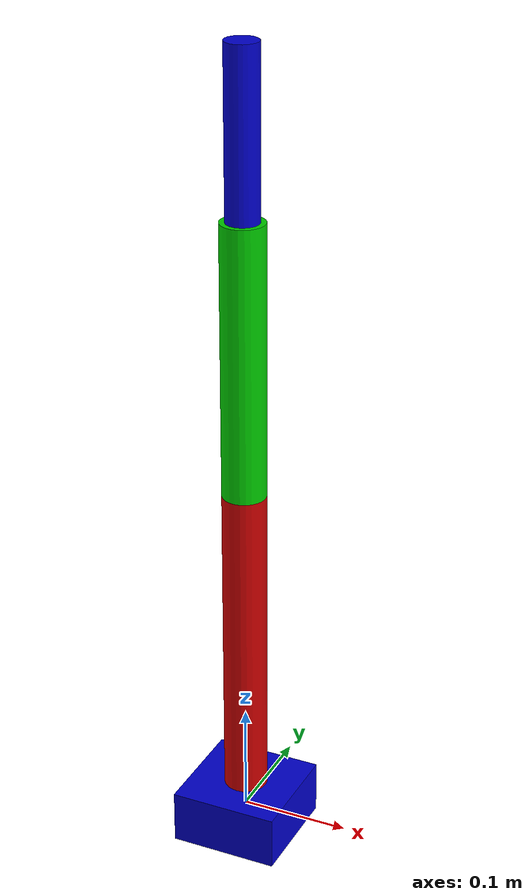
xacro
<?xml version="1.0"?>
<robot xmlns:xacro="http://www.ros.org/wiki/xacro" name="mock_motor_robot">

  <!-- Parameters -->

  <!-- Robot dimensions (example 3-DOF arm) -->
  <xacro:property name="link1_length" value="0.3" />
  <xacro:property name="link2_length" value="0.25" />
  <xacro:property name="link3_length" value="0.15" />

  <!-- Materials -->

  <material name="blue">
    <color rgba="0.0 0.0 0.8 1.0"/>
  </material>

  <material name="red">
    <color rgba="0.8 0.0 0.0 1.0"/>
  </material>

  <material name="green">
    <color rgba="0.0 0.8 0.0 1.0"/>
  </material>

  <!-- Base Link -->

  <link name="base_link">
    <visual>
      <geometry>
        <box size="0.1 0.1 0.05"/>
      </geometry>
      <material name="blue"/>
    </visual>
    <collision>
      <geometry>
        <box size="0.1 0.1 0.05"/>
      </geometry>
    </collision>
    <inertial>
      <mass value="0.5"/>
      <inertia ixx="0.001" ixy="0.0" ixz="0.0" iyy="0.001" iyz="0.0" izz="0.001"/>
    </inertial>
  </link>

  <!-- Link 1 -->

  <link name="link1">
    <visual>
      <origin xyz="0 0 ${link1_length/2}" rpy="0 0 0"/>
      <geometry>
        <cylinder radius="0.02" length="${link1_length}"/>
      </geometry>
      <material name="red"/>
    </visual>
    <collision>
      <origin xyz="0 0 ${link1_length/2}" rpy="0 0 0"/>
      <geometry>
        <cylinder radius="0.02" length="${link1_length}"/>
      </geometry>
    </collision>
    <inertial>
      <origin xyz="0 0 ${link1_length/2}" rpy="0 0 0"/>
      <mass value="0.2"/>
      <inertia ixx="0.001" ixy="0.0" ixz="0.0" iyy="0.001" iyz="0.0" izz="0.0001"/>
    </inertial>
  </link>

  <joint name="joint1" type="revolute">
    <parent link="base_link"/>
    <child link="link1"/>
    <origin xyz="0 0 0.025" rpy="0 0 0"/>
    <axis xyz="0 0 1"/>
    <limit lower="${-pi}" upper="${pi}" effort="10.0" velocity="3.14"/>
  </joint>

  <!-- Link 2 -->

  <link name="link2">
    <visual>
      <origin xyz="0 0 ${link2_length/2}" rpy="0 0 0"/>
      <geometry>
        <cylinder radius="0.02" length="${link2_length}"/>
      </geometry>
      <material name="green"/>
    </visual>
    <collision>
      <origin xyz="0 0 ${link2_length/2}" rpy="0 0 0"/>
      <geometry>
        <cylinder radius="0.02" length="${link2_length}"/>
      </geometry>
    </collision>
    <inertial>
      <origin xyz="0 0 ${link2_length/2}" rpy="0 0 0"/>
      <mass value="0.15"/>
      <inertia ixx="0.0008" ixy="0.0" ixz="0.0" iyy="0.0008" iyz="0.0" izz="0.0001"/>
    </inertial>
  </link>

  <joint name="joint2" type="revolute">
    <parent link="link1"/>
    <child link="link2"/>
    <origin xyz="0 0 ${link1_length}" rpy="0 0 0"/>
    <axis xyz="0 1 0"/>
    <limit lower="${-pi/2}" upper="${pi/2}" effort="5.0" velocity="3.14"/>
  </joint>

  <!-- Link 3 (End Effector) -->

  <link name="link3">
    <visual>
      <origin xyz="0 0 ${link3_length/2}" rpy="0 0 0"/>
      <geometry>
        <cylinder radius="0.015" length="${link3_length}"/>
      </geometry>
      <material name="blue"/>
    </visual>
    <collision>
      <origin xyz="0 0 ${link3_length/2}" rpy="0 0 0"/>
      <geometry>
        <cylinder radius="0.015" length="${link3_length}"/>
      </geometry>
    </collision>
    <inertial>
      <origin xyz="0 0 ${link3_length/2}" rpy="0 0 0"/>
      <mass value="0.1"/>
      <inertia ixx="0.0005" ixy="0.0" ixz="0.0" iyy="0.0005" iyz="0.0" izz="0.00005"/>
    </inertial>
  </link>

  <joint name="joint3" type="revolute">
    <parent link="link2"/>
    <child link="link3"/>
    <origin xyz="0 0 ${link2_length}" rpy="0 0 0"/>
    <axis xyz="0 1 0"/>
    <limit lower="${-pi/2}" upper="${pi/2}" effort="3.0" velocity="3.14"/>
  </joint>

  <!-- ros2_control Hardware Interface -->

  <ros2_control name="MockMotorSystem" type="system">

    <!-- Plugin declaration -->
    <hardware>
      <plugin>mock_interface/MockMotorHardwareInterface</plugin>

      <!-- Hardware parameters -->
      <param name="simulation_mode">true</param>
      <param name="update_rate">100</param>
    </hardware>

    <!-- Joint 1 Configuration -->
    <joint name="joint1">
      <!-- Motor-specific parameters -->
      <param name="motor_id">1</param>
      <param name="position_offset">0.0</param>
      <param name="position_scale">651.89832</param>  <!-- 4096/(2*pi) -->
      <param name="velocity_scale">0.111</param>
      <param name="effort_scale">0.001</param>

      <!-- Command interfaces (what controllers can write) -->
      <command_interface name="position">
        <param name="min">${-pi}</param>
        <param name="max">${pi}</param>
      </command_interface>
      <command_interface name="velocity">
        <param name="min">-3.14</param>
        <param name="max">3.14</param>
      </command_interface>

      <!-- State interfaces (what controllers can read) -->
      <state_interface name="position"/>
      <state_interface name="velocity"/>
      <state_interface name="effort"/>
      <state_interface name="temperature"/>
    </joint>

    <!-- Joint 2 Configuration -->
    <joint name="joint2">
      <param name="motor_id">2</param>
      <param name="position_offset">0.0</param>
      <param name="position_scale">651.89832</param>
      <param name="velocity_scale">0.111</param>
      <param name="effort_scale">0.001</param>

      <command_interface name="position">
        <param name="min">${-pi/2}</param>
        <param name="max">${pi/2}</param>
      </command_interface>
      <command_interface name="velocity">
        <param name="min">-3.14</param>
        <param name="max">3.14</param>
      </command_interface>

      <state_interface name="position"/>
      <state_interface name="velocity"/>
      <state_interface name="effort"/>
      <state_interface name="temperature"/>
    </joint>

    <!-- Joint 3 Configuration -->
    <joint name="joint3">
      <param name="motor_id">3</param>
      <param name="position_offset">0.0</param>
      <param name="position_scale">651.89832</param>
      <param name="velocity_scale">0.111</param>
      <param name="effort_scale">0.001</param>

      <command_interface name="position">
        <param name="min">${-pi/2}</param>
        <param name="max">${pi/2}</param>
      </command_interface>
      <command_interface name="velocity">
        <param name="min">-3.14</param>
        <param name="max">3.14</param>
      </command_interface>

      <state_interface name="position"/>
      <state_interface name="velocity"/>
      <state_interface name="effort"/>
      <state_interface name="temperature"/>
    </joint>

  </ros2_control>

</robot>
